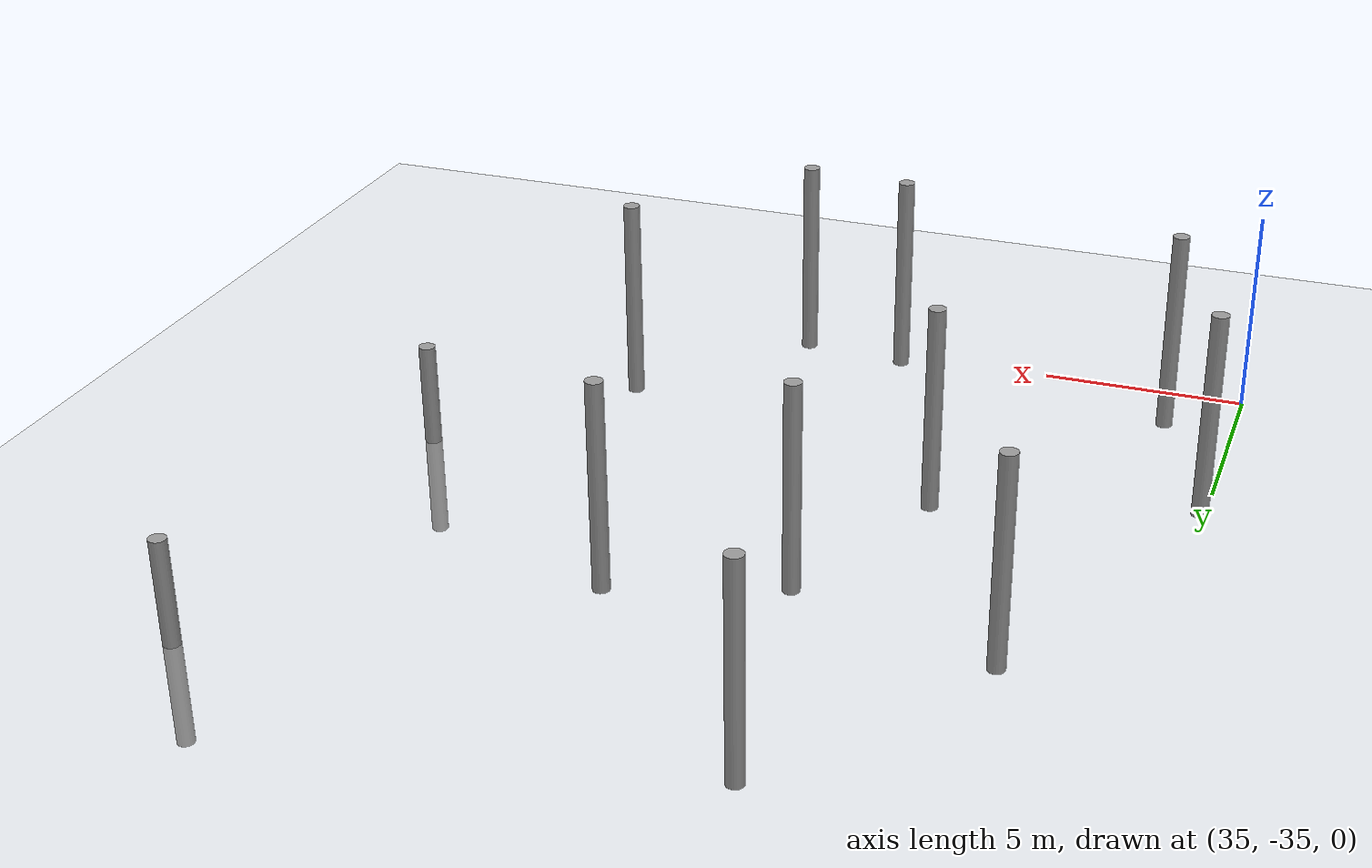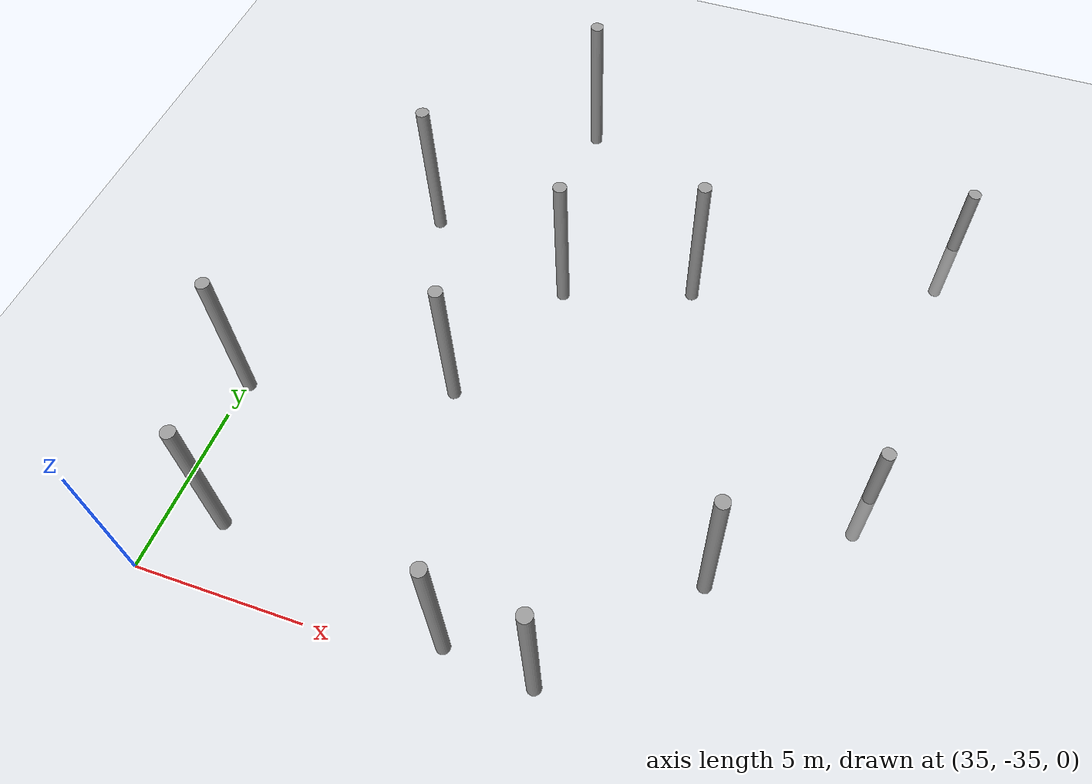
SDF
<sdf version="1.6">
 <world name="default">
  <model name="ground_plane">
   <static>1</static>
   <link name="link">
    <collision name="collision">
     <geometry><plane><normal>0 0 1</normal><size>100 100</size></plane></geometry>
     <surface><friction><ode><mu>100</mu><mu2>50</mu2></ode></friction></surface>
    </collision>
    <visual name="visual">
     <cast_shadows>0</cast_shadows>
     <geometry><plane><normal>0 0 1</normal><size>100 100</size></plane></geometry>
     <material>
      <script><uri>file://media/materials/scripts/gazebo.material</uri><name>Gazebo/Grey</name></script>
     </material>
    </visual>
   </link>
  </model>
  <model name="empty_pillars_9">
   <model name="empty_pillar_clone_0">
    <link name="link">
     <inertial>
      <mass>1</mass>
      <inertia><ixx>0.145833</ixx><ixy>0</ixy><ixz>0</ixz><iyy>0.145833</iyy><iyz>0</iyz><izz>0.125</izz></inertia>
     </inertial>
     <visual name="visual">
      <geometry><cylinder><radius>0.2</radius><length>5</length></cylinder></geometry>
      <material>
       <script><name>Gazebo/Grey</name><uri>file://media/materials/scripts/gazebo.material</uri></script>
       <shader type="vertex"><normal_map>__default__</normal_map></shader>
       <ambient>0.3 0.3 0.3 1</ambient>
       <diffuse>0.7 0.7 0.7 1</diffuse>
       <specular>0.01 0.01 0.01 1</specular>
       <emissive>0 0 0 1</emissive>
      </material>
     </visual>
     <collision name="collision">
      <geometry><cylinder><radius>0.05</radius><length>5</length></cylinder></geometry>
      <surface>
       <friction>
        <ode><mu>1</mu><mu2>1</mu2><fdir1>0 0 0</fdir1><slip1>0</slip1><slip2>0</slip2></ode>
        <torsional>
         <coefficient>1</coefficient>
         <patch_radius>0</patch_radius>
         <surface_radius>0</surface_radius>
         <use_patch_radius>1</use_patch_radius>
         <ode><slip>0</slip></ode>
        </torsional>
       </friction>
       <bounce><restitution_coefficient>0</restitution_coefficient><threshold>1e+06</threshold></bounce>
       <contact>
        <collide_without_contact>0</collide_without_contact>
        <collide_without_contact_bitmask>1</collide_without_contact_bitmask>
        <collide_bitmask>1</collide_bitmask>
        <ode>
         <soft_cfm>0</soft_cfm>
         <soft_erp>0.2</soft_erp>
         <kp>1e+13</kp>
         <kd>1</kd>
         <max_vel>0.01</max_vel>
         <min_depth>0</min_depth>
        </ode>
        <bullet>
         <split_impulse>1</split_impulse>
         <split_impulse_penetration_threshold>-0.01</split_impulse_penetration_threshold>
         <soft_cfm>0</soft_cfm>
         <soft_erp>0.2</soft_erp>
         <kp>1e+13</kp>
         <kd>1</kd>
        </bullet>
       </contact>
      </surface>
     </collision>
    </link>
    <static>0</static>
    <pose>10.3453 -7.35986 0 0 -0 0</pose>
   </model>
   <model name="empty_pillar_clone_32">
    <link name="link">
     <inertial>
      <mass>1</mass>
      <inertia><ixx>0.145833</ixx><ixy>0</ixy><ixz>0</ixz><iyy>0.145833</iyy><iyz>0</iyz><izz>0.125</izz></inertia>
     </inertial>
     <visual name="visual">
      <geometry><cylinder><radius>0.2</radius><length>5</length></cylinder></geometry>
      <material>
       <script><name>Gazebo/Grey</name><uri>file://media/materials/scripts/gazebo.material</uri></script>
       <shader type="vertex"><normal_map>__default__</normal_map></shader>
       <ambient>0.3 0.3 0.3 1</ambient>
       <diffuse>0.7 0.7 0.7 1</diffuse>
       <specular>0.01 0.01 0.01 1</specular>
       <emissive>0 0 0 1</emissive>
      </material>
     </visual>
     <collision name="collision">
      <geometry><cylinder><radius>0.05</radius><length>5</length></cylinder></geometry>
      <surface>
       <friction>
        <ode><mu>1</mu><mu2>1</mu2><fdir1>0 0 0</fdir1><slip1>0</slip1><slip2>0</slip2></ode>
        <torsional>
         <coefficient>1</coefficient>
         <patch_radius>0</patch_radius>
         <surface_radius>0</surface_radius>
         <use_patch_radius>1</use_patch_radius>
         <ode><slip>0</slip></ode>
        </torsional>
       </friction>
       <bounce><restitution_coefficient>0</restitution_coefficient><threshold>1e+06</threshold></bounce>
       <contact>
        <collide_without_contact>0</collide_without_contact>
        <collide_without_contact_bitmask>1</collide_without_contact_bitmask>
        <collide_bitmask>1</collide_bitmask>
        <ode>
         <soft_cfm>0</soft_cfm>
         <soft_erp>0.2</soft_erp>
         <kp>1e+13</kp>
         <kd>1</kd>
         <max_vel>0.01</max_vel>
         <min_depth>0</min_depth>
        </ode>
        <bullet>
         <split_impulse>1</split_impulse>
         <split_impulse_penetration_threshold>-0.01</split_impulse_penetration_threshold>
         <soft_cfm>0</soft_cfm>
         <soft_erp>0.2</soft_erp>
         <kp>1e+13</kp>
         <kd>1</kd>
        </bullet>
       </contact>
      </surface>
     </collision>
    </link>
    <static>0</static>
    <pose>21.9854 0.15966 0 0 -0 0</pose>
   </model>
   <model name="empty_pillar_clone_33">
    <link name="link">
     <inertial>
      <mass>1</mass>
      <inertia><ixx>0.145833</ixx><ixy>0</ixy><ixz>0</ixz><iyy>0.145833</iyy><iyz>0</iyz><izz>0.125</izz></inertia>
     </inertial>
     <visual name="visual">
      <geometry><cylinder><radius>0.2</radius><length>5</length></cylinder></geometry>
      <material>
       <script><name>Gazebo/Grey</name><uri>file://media/materials/scripts/gazebo.material</uri></script>
       <shader type="vertex"><normal_map>__default__</normal_map></shader>
       <ambient>0.3 0.3 0.3 1</ambient>
       <diffuse>0.7 0.7 0.7 1</diffuse>
       <specular>0.01 0.01 0.01 1</specular>
       <emissive>0 0 0 1</emissive>
      </material>
     </visual>
     <collision name="collision">
      <geometry><cylinder><radius>0.05</radius><length>5</length></cylinder></geometry>
      <surface>
       <friction>
        <ode><mu>1</mu><mu2>1</mu2><fdir1>0 0 0</fdir1><slip1>0</slip1><slip2>0</slip2></ode>
        <torsional>
         <coefficient>1</coefficient>
         <patch_radius>0</patch_radius>
         <surface_radius>0</surface_radius>
         <use_patch_radius>1</use_patch_radius>
         <ode><slip>0</slip></ode>
        </torsional>
       </friction>
       <bounce><restitution_coefficient>0</restitution_coefficient><threshold>1e+06</threshold></bounce>
       <contact>
        <collide_without_contact>0</collide_without_contact>
        <collide_without_contact_bitmask>1</collide_without_contact_bitmask>
        <collide_bitmask>1</collide_bitmask>
        <ode>
         <soft_cfm>0</soft_cfm>
         <soft_erp>0.2</soft_erp>
         <kp>1e+13</kp>
         <kd>1</kd>
         <max_vel>0.01</max_vel>
         <min_depth>0</min_depth>
        </ode>
        <bullet>
         <split_impulse>1</split_impulse>
         <split_impulse_penetration_threshold>-0.01</split_impulse_penetration_threshold>
         <soft_cfm>0</soft_cfm>
         <soft_erp>0.2</soft_erp>
         <kp>1e+13</kp>
         <kd>1</kd>
        </bullet>
       </contact>
      </surface>
     </collision>
    </link>
    <static>0</static>
    <pose>21.5621 -13.0704 0 0 -0 0</pose>
   </model>
   <model name="empty_pillar_clone_48">
    <link name="link">
     <inertial>
      <mass>1</mass>
      <inertia><ixx>0.145833</ixx><ixy>0</ixy><ixz>0</ixz><iyy>0.145833</iyy><iyz>0</iyz><izz>0.125</izz></inertia>
     </inertial>
     <visual name="visual">
      <geometry><cylinder><radius>0.2</radius><length>5</length></cylinder></geometry>
      <material>
       <script><name>Gazebo/Grey</name><uri>file://media/materials/scripts/gazebo.material</uri></script>
       <shader type="vertex"><normal_map>__default__</normal_map></shader>
       <ambient>0.3 0.3 0.3 1</ambient>
       <diffuse>0.7 0.7 0.7 1</diffuse>
       <specular>0.01 0.01 0.01 1</specular>
       <emissive>0 0 0 1</emissive>
      </material>
     </visual>
     <collision name="collision">
      <geometry><cylinder><radius>0.05</radius><length>5</length></cylinder></geometry>
      <surface>
       <friction>
        <ode><mu>1</mu><mu2>1</mu2><fdir1>0 0 0</fdir1><slip1>0</slip1><slip2>0</slip2></ode>
        <torsional>
         <coefficient>1</coefficient>
         <patch_radius>0</patch_radius>
         <surface_radius>0</surface_radius>
         <use_patch_radius>1</use_patch_radius>
         <ode><slip>0</slip></ode>
        </torsional>
       </friction>
       <bounce><restitution_coefficient>0</restitution_coefficient><threshold>1e+06</threshold></bounce>
       <contact>
        <collide_without_contact>0</collide_without_contact>
        <collide_without_contact_bitmask>1</collide_without_contact_bitmask>
        <collide_bitmask>1</collide_bitmask>
        <ode>
         <soft_cfm>0</soft_cfm>
         <soft_erp>0.2</soft_erp>
         <kp>1e+13</kp>
         <kd>1</kd>
         <max_vel>0.01</max_vel>
         <min_depth>0</min_depth>
        </ode>
        <bullet>
         <split_impulse>1</split_impulse>
         <split_impulse_penetration_threshold>-0.01</split_impulse_penetration_threshold>
         <soft_cfm>0</soft_cfm>
         <soft_erp>0.2</soft_erp>
         <kp>1e+13</kp>
         <kd>1</kd>
        </bullet>
       </contact>
      </surface>
     </collision>
    </link>
    <static>0</static>
    <pose>16.2633 -5.65052 0 0 -0 0</pose>
   </model>
   <model name="empty_pillar_clone_51">
    <link name="link">
     <inertial>
      <mass>1</mass>
      <inertia><ixx>0.145833</ixx><ixy>0</ixy><ixz>0</ixz><iyy>0.145833</iyy><iyz>0</iyz><izz>0.125</izz></inertia>
     </inertial>
     <visual name="visual">
      <geometry><cylinder><radius>0.2</radius><length>5</length></cylinder></geometry>
      <material>
       <script><name>Gazebo/Grey</name><uri>file://media/materials/scripts/gazebo.material</uri></script>
       <shader type="vertex"><normal_map>__default__</normal_map></shader>
       <ambient>0.3 0.3 0.3 1</ambient>
       <diffuse>0.7 0.7 0.7 1</diffuse>
       <specular>0.01 0.01 0.01 1</specular>
       <emissive>0 0 0 1</emissive>
      </material>
     </visual>
     <collision name="collision">
      <geometry><cylinder><radius>0.05</radius><length>5</length></cylinder></geometry>
      <surface>
       <friction>
        <ode><mu>1</mu><mu2>1</mu2><fdir1>0 0 0</fdir1><slip1>0</slip1><slip2>0</slip2></ode>
        <torsional>
         <coefficient>1</coefficient>
         <patch_radius>0</patch_radius>
         <surface_radius>0</surface_radius>
         <use_patch_radius>1</use_patch_radius>
         <ode><slip>0</slip></ode>
        </torsional>
       </friction>
       <bounce><restitution_coefficient>0</restitution_coefficient><threshold>1e+06</threshold></bounce>
       <contact>
        <collide_without_contact>0</collide_without_contact>
        <collide_without_contact_bitmask>1</collide_without_contact_bitmask>
        <collide_bitmask>1</collide_bitmask>
        <ode>
         <soft_cfm>0</soft_cfm>
         <soft_erp>0.2</soft_erp>
         <kp>1e+13</kp>
         <kd>1</kd>
         <max_vel>0.01</max_vel>
         <min_depth>0</min_depth>
        </ode>
        <bullet>
         <split_impulse>1</split_impulse>
         <split_impulse_penetration_threshold>-0.01</split_impulse_penetration_threshold>
         <soft_cfm>0</soft_cfm>
         <soft_erp>0.2</soft_erp>
         <kp>1e+13</kp>
         <kd>1</kd>
        </bullet>
       </contact>
      </surface>
     </collision>
    </link>
    <static>0</static>
    <pose>11.8943 -11.5792 0 0 -0 0</pose>
   </model>
   <model name="empty_pillar_clone_55">
    <link name="link">
     <inertial>
      <mass>1</mass>
      <inertia><ixx>0.145833</ixx><ixy>0</ixy><ixz>0</ixz><iyy>0.145833</iyy><iyz>0</iyz><izz>0.125</izz></inertia>
     </inertial>
     <visual name="visual">
      <geometry><cylinder><radius>0.2</radius><length>5</length></cylinder></geometry>
      <material>
       <script><name>Gazebo/Grey</name><uri>file://media/materials/scripts/gazebo.material</uri></script>
       <shader type="vertex"><normal_map>__default__</normal_map></shader>
       <ambient>0.3 0.3 0.3 1</ambient>
       <diffuse>0.7 0.7 0.7 1</diffuse>
       <specular>0.01 0.01 0.01 1</specular>
       <emissive>0 0 0 1</emissive>
      </material>
     </visual>
     <collision name="collision">
      <geometry><cylinder><radius>0.05</radius><length>5</length></cylinder></geometry>
      <surface>
       <friction>
        <ode><mu>1</mu><mu2>1</mu2><fdir1>0 0 0</fdir1><slip1>0</slip1><slip2>0</slip2></ode>
        <torsional>
         <coefficient>1</coefficient>
         <patch_radius>0</patch_radius>
         <surface_radius>0</surface_radius>
         <use_patch_radius>1</use_patch_radius>
         <ode><slip>0</slip></ode>
        </torsional>
       </friction>
       <bounce><restitution_coefficient>0</restitution_coefficient><threshold>1e+06</threshold></bounce>
       <contact>
        <collide_without_contact>0</collide_without_contact>
        <collide_without_contact_bitmask>1</collide_without_contact_bitmask>
        <collide_bitmask>1</collide_bitmask>
        <ode>
         <soft_cfm>0</soft_cfm>
         <soft_erp>0.2</soft_erp>
         <kp>1e+13</kp>
         <kd>1</kd>
         <max_vel>0.01</max_vel>
         <min_depth>0</min_depth>
        </ode>
        <bullet>
         <split_impulse>1</split_impulse>
         <split_impulse_penetration_threshold>-0.01</split_impulse_penetration_threshold>
         <soft_cfm>0</soft_cfm>
         <soft_erp>0.2</soft_erp>
         <kp>1e+13</kp>
         <kd>1</kd>
        </bullet>
       </contact>
      </surface>
     </collision>
    </link>
    <static>0</static>
    <pose>13.2247 0.382706 0 0 -0 0</pose>
   </model>
   <model name="empty_pillar_clone_6">
    <link name="link">
     <inertial>
      <mass>1</mass>
      <inertia><ixx>0.145833</ixx><ixy>0</ixy><ixz>0</ixz><iyy>0.145833</iyy><iyz>0</iyz><izz>0.125</izz></inertia>
     </inertial>
     <visual name="visual">
      <geometry><cylinder><radius>0.2</radius><length>5</length></cylinder></geometry>
      <material>
       <script><name>Gazebo/Grey</name><uri>file://media/materials/scripts/gazebo.material</uri></script>
       <shader type="vertex"><normal_map>__default__</normal_map></shader>
       <ambient>0.3 0.3 0.3 1</ambient>
       <diffuse>0.7 0.7 0.7 1</diffuse>
       <specular>0.01 0.01 0.01 1</specular>
       <emissive>0 0 0 1</emissive>
      </material>
     </visual>
     <collision name="collision">
      <geometry><cylinder><radius>0.05</radius><length>5</length></cylinder></geometry>
      <surface>
       <friction>
        <ode><mu>1</mu><mu2>1</mu2><fdir1>0 0 0</fdir1><slip1>0</slip1><slip2>0</slip2></ode>
        <torsional>
         <coefficient>1</coefficient>
         <patch_radius>0</patch_radius>
         <surface_radius>0</surface_radius>
         <use_patch_radius>1</use_patch_radius>
         <ode><slip>0</slip></ode>
        </torsional>
       </friction>
       <bounce><restitution_coefficient>0</restitution_coefficient><threshold>1e+06</threshold></bounce>
       <contact>
        <collide_without_contact>0</collide_without_contact>
        <collide_without_contact_bitmask>1</collide_without_contact_bitmask>
        <collide_bitmask>1</collide_bitmask>
        <ode>
         <soft_cfm>0</soft_cfm>
         <soft_erp>0.2</soft_erp>
         <kp>1e+13</kp>
         <kd>1</kd>
         <max_vel>0.01</max_vel>
         <min_depth>0</min_depth>
        </ode>
        <bullet>
         <split_impulse>1</split_impulse>
         <split_impulse_penetration_threshold>-0.01</split_impulse_penetration_threshold>
         <soft_cfm>0</soft_cfm>
         <soft_erp>0.2</soft_erp>
         <kp>1e+13</kp>
         <kd>1</kd>
        </bullet>
       </contact>
      </surface>
     </collision>
    </link>
    <static>0</static>
    <pose>24.9156 -9.11394 0 0 -0 0</pose>
   </model>
   <model name="empty_pillar_clone_7">
    <link name="link">
     <inertial>
      <mass>1</mass>
      <inertia><ixx>0.145833</ixx><ixy>0</ixy><ixz>0</ixz><iyy>0.145833</iyy><iyz>0</iyz><izz>0.125</izz></inertia>
     </inertial>
     <visual name="visual">
      <geometry><cylinder><radius>0.2</radius><length>5</length></cylinder></geometry>
      <material>
       <script><name>Gazebo/Grey</name><uri>file://media/materials/scripts/gazebo.material</uri></script>
       <shader type="vertex"><normal_map>__default__</normal_map></shader>
       <ambient>0.3 0.3 0.3 1</ambient>
       <diffuse>0.7 0.7 0.7 1</diffuse>
       <specular>0.01 0.01 0.01 1</specular>
       <emissive>0 0 0 1</emissive>
      </material>
     </visual>
     <collision name="collision">
      <geometry><cylinder><radius>0.05</radius><length>5</length></cylinder></geometry>
      <surface>
       <friction>
        <ode><mu>1</mu><mu2>1</mu2><fdir1>0 0 0</fdir1><slip1>0</slip1><slip2>0</slip2></ode>
        <torsional>
         <coefficient>1</coefficient>
         <patch_radius>0</patch_radius>
         <surface_radius>0</surface_radius>
         <use_patch_radius>1</use_patch_radius>
         <ode><slip>0</slip></ode>
        </torsional>
       </friction>
       <bounce><restitution_coefficient>0</restitution_coefficient><threshold>1e+06</threshold></bounce>
       <contact>
        <collide_without_contact>0</collide_without_contact>
        <collide_without_contact_bitmask>1</collide_without_contact_bitmask>
        <collide_bitmask>1</collide_bitmask>
        <ode>
         <soft_cfm>0</soft_cfm>
         <soft_erp>0.2</soft_erp>
         <kp>1e+13</kp>
         <kd>1</kd>
         <max_vel>0.01</max_vel>
         <min_depth>0</min_depth>
        </ode>
        <bullet>
         <split_impulse>1</split_impulse>
         <split_impulse_penetration_threshold>-0.01</split_impulse_penetration_threshold>
         <soft_cfm>0</soft_cfm>
         <soft_erp>0.2</soft_erp>
         <kp>1e+13</kp>
         <kd>1</kd>
        </bullet>
       </contact>
      </surface>
     </collision>
    </link>
    <static>0</static>
    <pose>16.9242 5.74519 0 0 -0 0</pose>
   </model>
   <model name="empty_pillar_clone_8">
    <link name="link">
     <inertial>
      <mass>1</mass>
      <inertia><ixx>0.145833</ixx><ixy>0</ixy><ixz>0</ixz><iyy>0.145833</iyy><iyz>0</iyz><izz>0.125</izz></inertia>
     </inertial>
     <visual name="visual">
      <geometry><cylinder><radius>0.2</radius><length>5</length></cylinder></geometry>
      <material>
       <script><name>Gazebo/Grey</name><uri>file://media/materials/scripts/gazebo.material</uri></script>
       <shader type="vertex"><normal_map>__default__</normal_map></shader>
       <ambient>0.3 0.3 0.3 1</ambient>
       <diffuse>0.7 0.7 0.7 1</diffuse>
       <specular>0.01 0.01 0.01 1</specular>
       <emissive>0 0 0 1</emissive>
      </material>
     </visual>
     <collision name="collision">
      <geometry><cylinder><radius>0.05</radius><length>5</length></cylinder></geometry>
      <surface>
       <friction>
        <ode><mu>1</mu><mu2>1</mu2><fdir1>0 0 0</fdir1><slip1>0</slip1><slip2>0</slip2></ode>
        <torsional>
         <coefficient>1</coefficient>
         <patch_radius>0</patch_radius>
         <surface_radius>0</surface_radius>
         <use_patch_radius>1</use_patch_radius>
         <ode><slip>0</slip></ode>
        </torsional>
       </friction>
       <bounce><restitution_coefficient>0</restitution_coefficient><threshold>1e+06</threshold></bounce>
       <contact>
        <collide_without_contact>0</collide_without_contact>
        <collide_without_contact_bitmask>1</collide_without_contact_bitmask>
        <collide_bitmask>1</collide_bitmask>
        <ode>
         <soft_cfm>0</soft_cfm>
         <soft_erp>0.2</soft_erp>
         <kp>1e+13</kp>
         <kd>1</kd>
         <max_vel>0.01</max_vel>
         <min_depth>0</min_depth>
        </ode>
        <bullet>
         <split_impulse>1</split_impulse>
         <split_impulse_penetration_threshold>-0.01</split_impulse_penetration_threshold>
         <soft_cfm>0</soft_cfm>
         <soft_erp>0.2</soft_erp>
         <kp>1e+13</kp>
         <kd>1</kd>
        </bullet>
       </contact>
      </surface>
     </collision>
    </link>
    <static>0</static>
    <pose>18.9854 -12.8403 0 0 -0 0</pose>
   </model>
   <model name="empty_pillar_clone_9">
    <link name="link">
     <inertial>
      <mass>1</mass>
      <inertia><ixx>0.145833</ixx><ixy>0</ixy><ixz>0</ixz><iyy>0.145833</iyy><iyz>0</iyz><izz>0.125</izz></inertia>
     </inertial>
     <visual name="visual">
      <geometry><cylinder><radius>0.2</radius><length>5</length></cylinder></geometry>
      <material>
       <script><name>Gazebo/Grey</name><uri>file://media/materials/scripts/gazebo.material</uri></script>
       <shader type="vertex"><normal_map>__default__</normal_map></shader>
       <ambient>0.3 0.3 0.3 1</ambient>
       <diffuse>0.7 0.7 0.7 1</diffuse>
       <specular>0.01 0.01 0.01 1</specular>
       <emissive>0 0 0 1</emissive>
      </material>
     </visual>
     <collision name="collision">
      <geometry><cylinder><radius>0.05</radius><length>5</length></cylinder></geometry>
      <surface>
       <friction>
        <ode><mu>1</mu><mu2>1</mu2><fdir1>0 0 0</fdir1><slip1>0</slip1><slip2>0</slip2></ode>
        <torsional>
         <coefficient>1</coefficient>
         <patch_radius>0</patch_radius>
         <surface_radius>0</surface_radius>
         <use_patch_radius>1</use_patch_radius>
         <ode><slip>0</slip></ode>
        </torsional>
       </friction>
       <bounce><restitution_coefficient>0</restitution_coefficient><threshold>1e+06</threshold></bounce>
       <contact>
        <collide_without_contact>0</collide_without_contact>
        <collide_without_contact_bitmask>1</collide_without_contact_bitmask>
        <collide_bitmask>1</collide_bitmask>
        <ode>
         <soft_cfm>0</soft_cfm>
         <soft_erp>0.2</soft_erp>
         <kp>1e+13</kp>
         <kd>1</kd>
         <max_vel>0.01</max_vel>
         <min_depth>0</min_depth>
        </ode>
        <bullet>
         <split_impulse>1</split_impulse>
         <split_impulse_penetration_threshold>-0.01</split_impulse_penetration_threshold>
         <soft_cfm>0</soft_cfm>
         <soft_erp>0.2</soft_erp>
         <kp>1e+13</kp>
         <kd>1</kd>
        </bullet>
       </contact>
      </surface>
     </collision>
    </link>
    <static>0</static>
    <pose>18.1111 -1.13899 0 0 -0 0</pose>
   </model>
   <static>0</static>
   <pose>24.7676 -21.5571 2.56943 0 -0 0</pose>
  </model>
  <model name="empty_pillars_10">
   <model name="empty_pillar_clone_18">
    <link name="link">
     <inertial>
      <mass>1</mass>
      <inertia><ixx>0.145833</ixx><ixy>0</ixy><ixz>0</ixz><iyy>0.145833</iyy><iyz>0</iyz><izz>0.125</izz></inertia>
     </inertial>
     <visual name="visual">
      <geometry><cylinder><radius>0.2</radius><length>5</length></cylinder></geometry>
      <material>
       <script><name>Gazebo/Grey</name><uri>file://media/materials/scripts/gazebo.material</uri></script>
       <shader type="vertex"><normal_map>__default__</normal_map></shader>
       <ambient>0.3 0.3 0.3 1</ambient>
       <diffuse>0.7 0.7 0.7 1</diffuse>
       <specular>0.01 0.01 0.01 1</specular>
       <emissive>0 0 0 1</emissive>
      </material>
     </visual>
     <collision name="collision">
      <geometry><cylinder><radius>0.05</radius><length>5</length></cylinder></geometry>
      <surface>
       <friction>
        <ode><mu>1</mu><mu2>1</mu2><fdir1>0 0 0</fdir1><slip1>0</slip1><slip2>0</slip2></ode>
        <torsional>
         <coefficient>1</coefficient>
         <patch_radius>0</patch_radius>
         <surface_radius>0</surface_radius>
         <use_patch_radius>1</use_patch_radius>
         <ode><slip>0</slip></ode>
        </torsional>
       </friction>
       <bounce><restitution_coefficient>0</restitution_coefficient><threshold>1e+06</threshold></bounce>
       <contact>
        <collide_without_contact>0</collide_without_contact>
        <collide_without_contact_bitmask>1</collide_without_contact_bitmask>
        <collide_bitmask>1</collide_bitmask>
        <ode>
         <soft_cfm>0</soft_cfm>
         <soft_erp>0.2</soft_erp>
         <kp>1e+13</kp>
         <kd>1</kd>
         <max_vel>0.01</max_vel>
         <min_depth>0</min_depth>
        </ode>
        <bullet>
         <split_impulse>1</split_impulse>
         <split_impulse_penetration_threshold>-0.01</split_impulse_penetration_threshold>
         <soft_cfm>0</soft_cfm>
         <soft_erp>0.2</soft_erp>
         <kp>1e+13</kp>
         <kd>1</kd>
        </bullet>
       </contact>
      </surface>
     </collision>
    </link>
    <static>0</static>
    <pose>-20.0146 5.15966 0 0 -0 0</pose>
   </model>
   <model name="empty_pillar_clone_36">
    <link name="link">
     <inertial>
      <mass>1</mass>
      <inertia><ixx>0.145833</ixx><ixy>0</ixy><ixz>0</ixz><iyy>0.145833</iyy><iyz>0</iyz><izz>0.125</izz></inertia>
     </inertial>
     <visual name="visual">
      <geometry><cylinder><radius>0.2</radius><length>5</length></cylinder></geometry>
      <material>
       <script><name>Gazebo/Grey</name><uri>file://media/materials/scripts/gazebo.material</uri></script>
       <shader type="vertex"><normal_map>__default__</normal_map></shader>
       <ambient>0.3 0.3 0.3 1</ambient>
       <diffuse>0.7 0.7 0.7 1</diffuse>
       <specular>0.01 0.01 0.01 1</specular>
       <emissive>0 0 0 1</emissive>
      </material>
     </visual>
     <collision name="collision">
      <geometry><cylinder><radius>0.05</radius><length>5</length></cylinder></geometry>
      <surface>
       <friction>
        <ode><mu>1</mu><mu2>1</mu2><fdir1>0 0 0</fdir1><slip1>0</slip1><slip2>0</slip2></ode>
        <torsional>
         <coefficient>1</coefficient>
         <patch_radius>0</patch_radius>
         <surface_radius>0</surface_radius>
         <use_patch_radius>1</use_patch_radius>
         <ode><slip>0</slip></ode>
        </torsional>
       </friction>
       <bounce><restitution_coefficient>0</restitution_coefficient><threshold>1e+06</threshold></bounce>
       <contact>
        <collide_without_contact>0</collide_without_contact>
        <collide_without_contact_bitmask>1</collide_without_contact_bitmask>
        <collide_bitmask>1</collide_bitmask>
        <ode>
         <soft_cfm>0</soft_cfm>
         <soft_erp>0.2</soft_erp>
         <kp>1e+13</kp>
         <kd>1</kd>
         <max_vel>0.01</max_vel>
         <min_depth>0</min_depth>
        </ode>
        <bullet>
         <split_impulse>1</split_impulse>
         <split_impulse_penetration_threshold>-0.01</split_impulse_penetration_threshold>
         <soft_cfm>0</soft_cfm>
         <soft_erp>0.2</soft_erp>
         <kp>1e+13</kp>
         <kd>1</kd>
        </bullet>
       </contact>
      </surface>
     </collision>
    </link>
    <static>0</static>
    <pose>-21.0146 -4.84034 0 0 -0 0</pose>
   </model>
   <static>0</static>
   <pose>74.3997 -21.7718 0 0 -0 0</pose>
  </model>
 </world>
</sdf>
